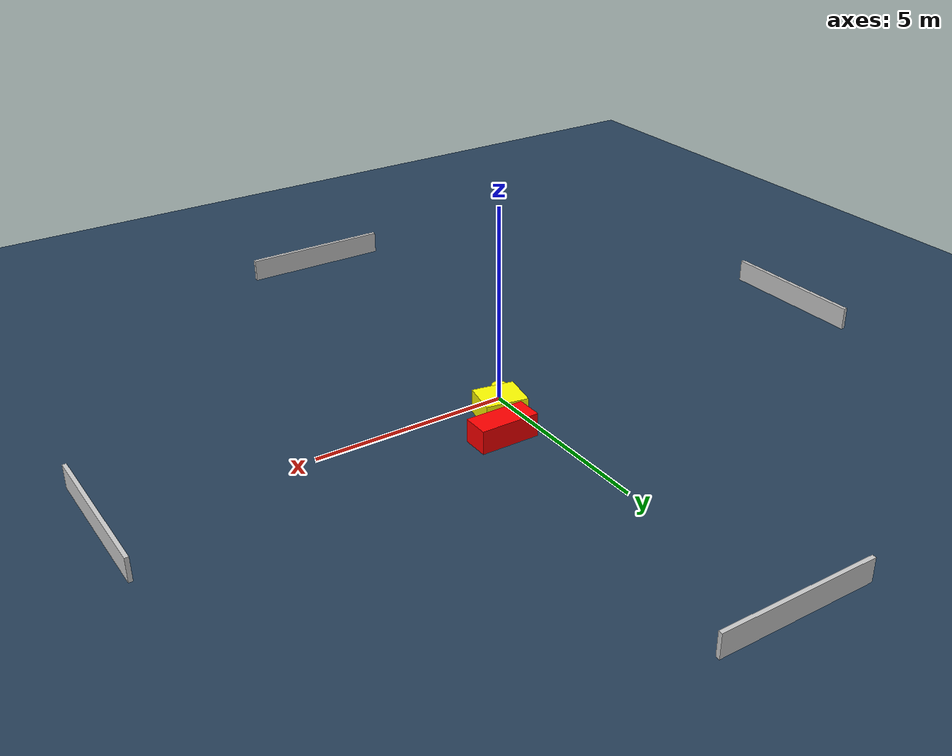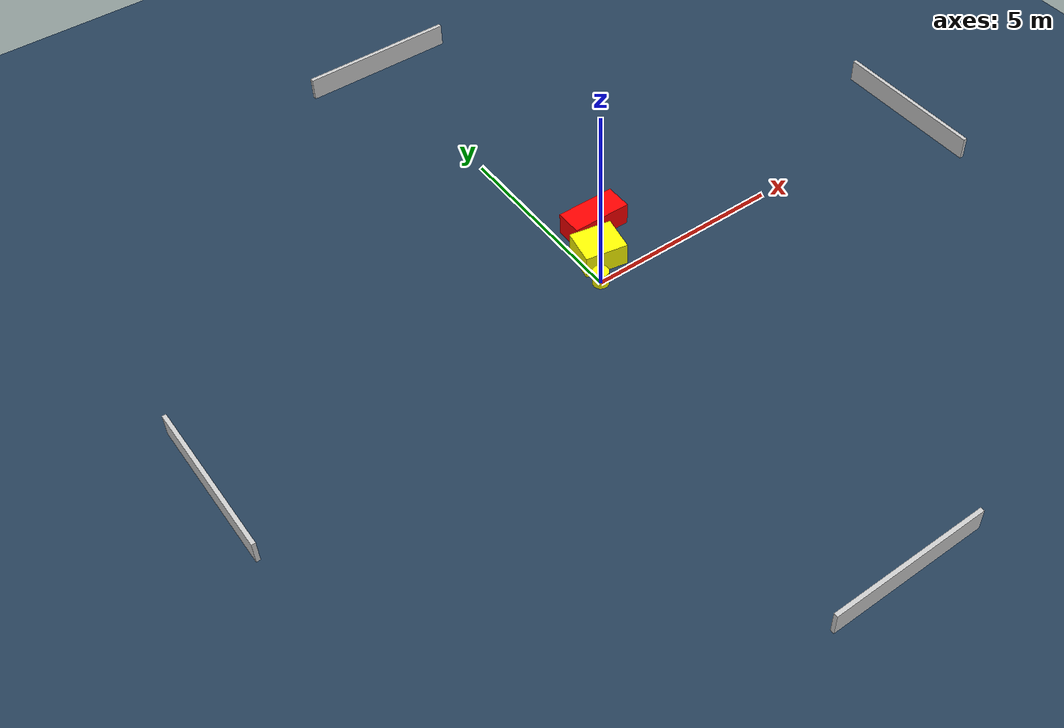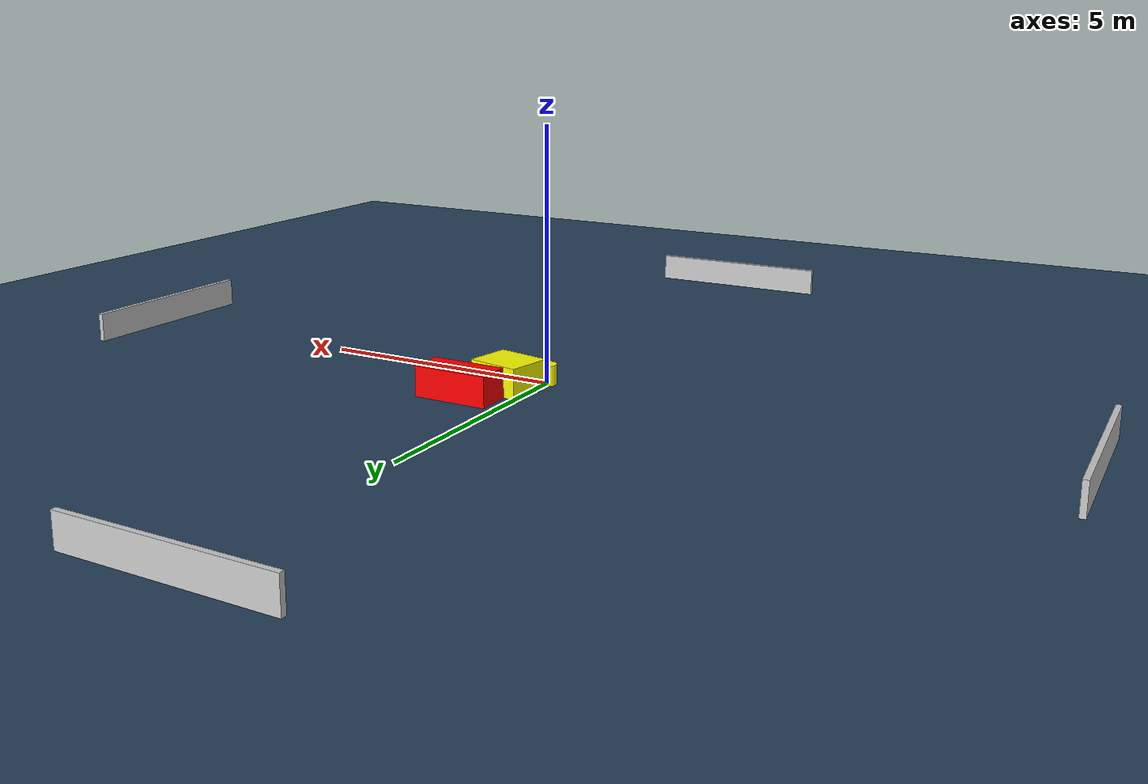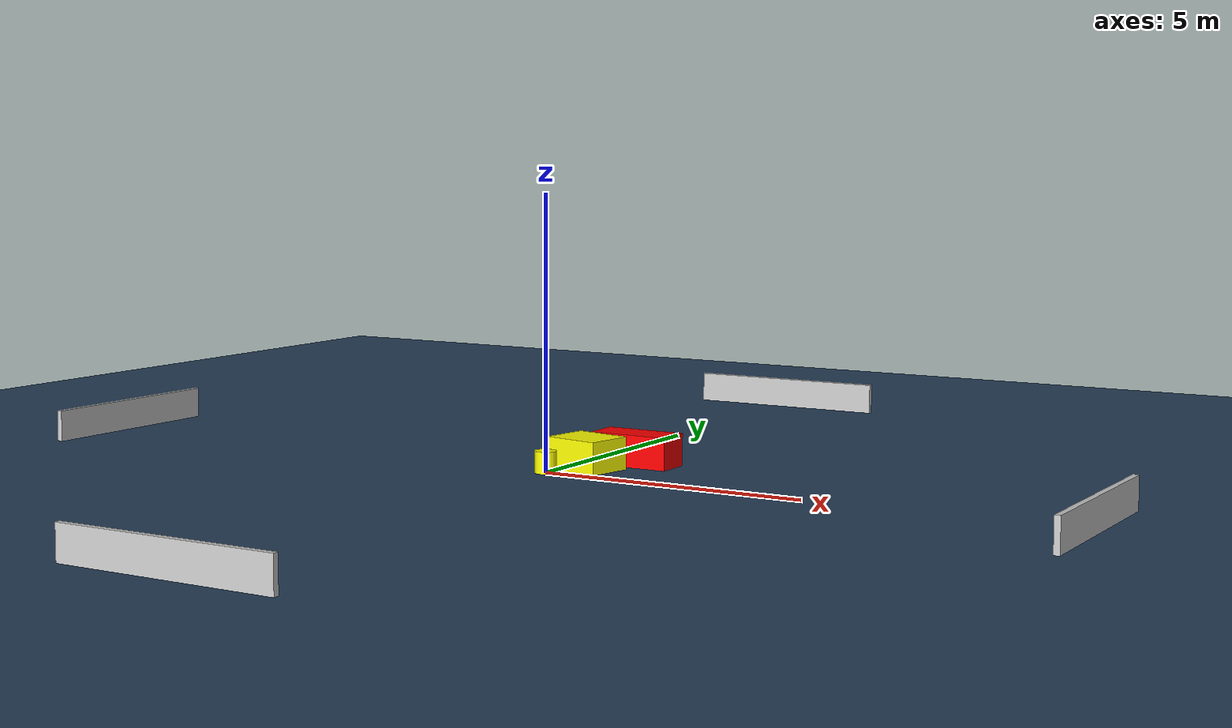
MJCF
<?xml version="1.0" ?>
<mujoco model="generated_environment">
  <option timestep="0.01" integrator="RK4" cone="elliptic"/>
  <default>
    <geom density="1"/>
  </default>
  <asset>
    <texture builtin="gradient" height="3072" name="skybox" rgb1="0.3 0.5 0.7" rgb2="0 0 0" type="skybox" width="512"/>
    <texture builtin="checker" height="300" name="groundplane" rgb1="0.2 0.3 0.4" rgb2="0.1 0.2 0.3" type="2d" width="300"/>
    <material name="groundplane" reflectance="0.2" texrepeat="5 5" texture="groundplane"/>
  </asset>
  <worldbody>
    <light dir="0 0 -1" directional="true" pos="0 0 1.5"/>
    <geom condim="3" friction="0.5 0.005 0.001" material="groundplane" name="floor" pos="0 0 0" size="0 0 0.05" type="plane"/>
    <body name="walls">
      <geom name="wall_1" condim="4" pos="-10.0 0.0 0.3" rgba="0.800000011920929 0.800000011920929 0.800000011920929 1.0" size="0.05 2.0 0.3" type="box"/>
      <geom name="wall_2" condim="4" pos="10.0 0.0 0.3" rgba="0.800000011920929 0.800000011920929 0.800000011920929 1.0" size="0.05 2.0 0.3" type="box"/>
      <geom name="wall_3" condim="4" pos="0.0 -10.0 0.3" rgba="0.800000011920929 0.800000011920929 0.800000011920929 1.0" size="2.0 0.05 0.3" type="box"/>
      <geom name="wall_4" condim="4" pos="0.0 10.0 0.3" rgba="0.800000011920929 0.800000011920929 0.800000011920929 1.0" size="2.0 0.05 0.3" type="box"/>
    </body>
    <body name="robot">
      <joint name="joint_x" type="slide" pos="0 0 0" axis="1 0 0"/>
      <joint name="joint_y" type="slide" pos="0 0 0" axis="0 1 0"/>
      <geom name="robot" type="cylinder" pos="0.0 0.0 0.2" size="0.2 0.2 0.0" mass="5.0" friction="1.0 0.005 0.0001" condim="4" rgba="1.0 1.0 0.0 1.0"/>
    </body>
    <body name="obstacle_1_movable">
      <geom name="obstacle_1_movable" condim="4" pos="0.4483419559149869 0.6893921567938138 0.3" euler="0 0 259.4254893934438" friction="0.0 0.005 0.001" rgba="1.0 1.0 0.0 1.0" size="0.45739326591572727 0.5378096415899533 0.3" type="box" mass="0.1"/>
      <joint type="free"/>
    </body>
    <body name="obstacle_2_static">
      <geom name="obstacle_2_static" condim="4" pos="0.9810396828336309 1.5872716383560952 0.3" euler="0 0 179.91629274228225" friction="0.0 0.005 0.001" rgba="1.0 0.0 0.0 1.0" size="0.757432516317107 0.3457385418272044 0.3" type="box"/>
    </body>
  </worldbody>
  <actuator>
    <motor name="actuator_x" joint="joint_x" gear="1" ctrlrange="-1 1"/>
    <motor name="actuator_y" joint="joint_y" gear="1" ctrlrange="-1 1"/>
  </actuator>
</mujoco>
